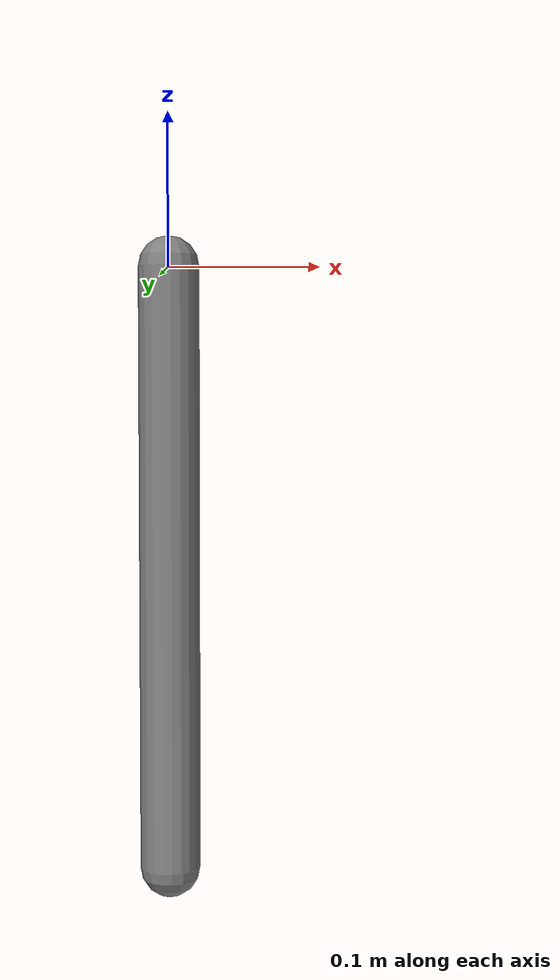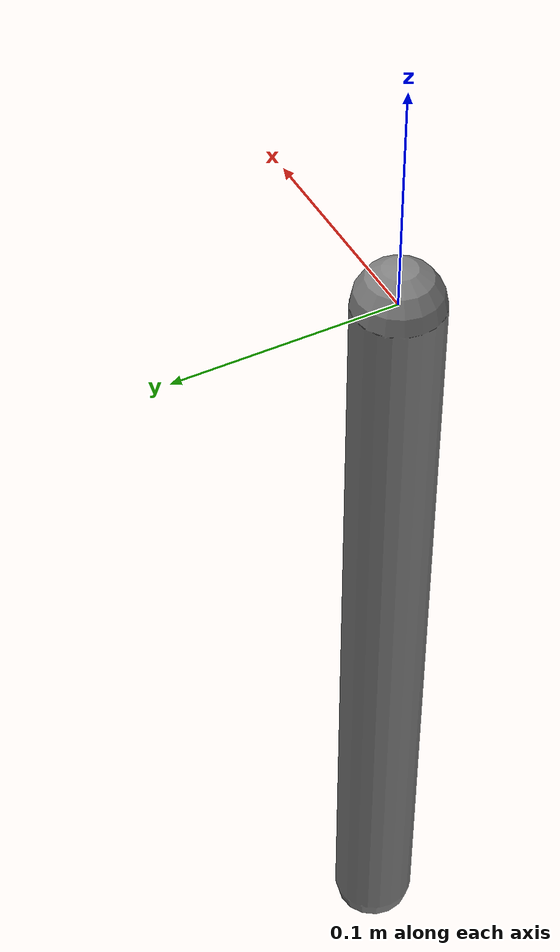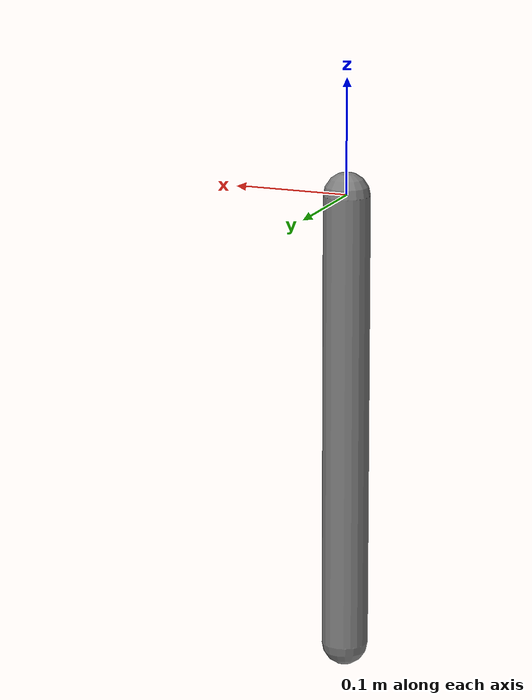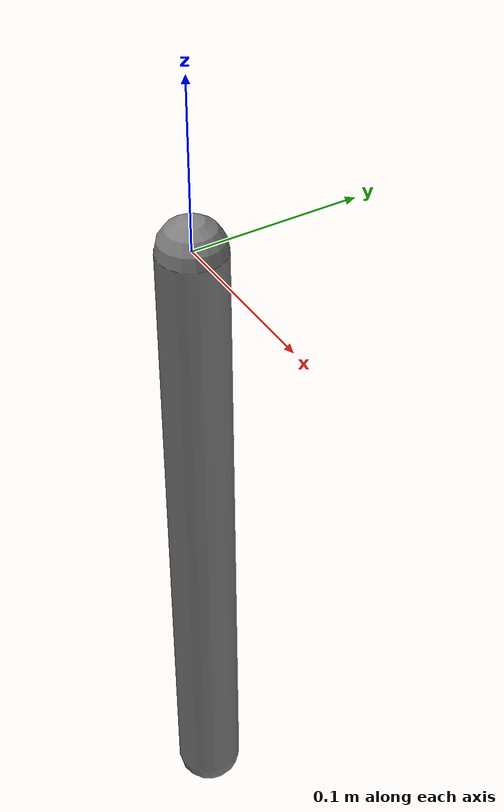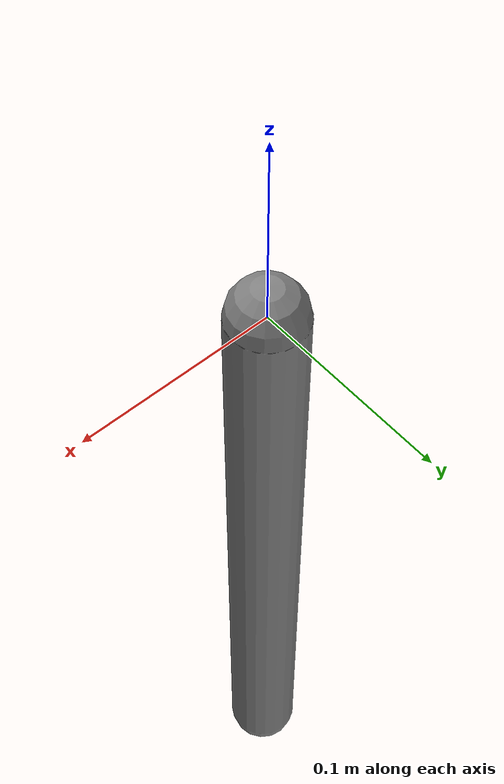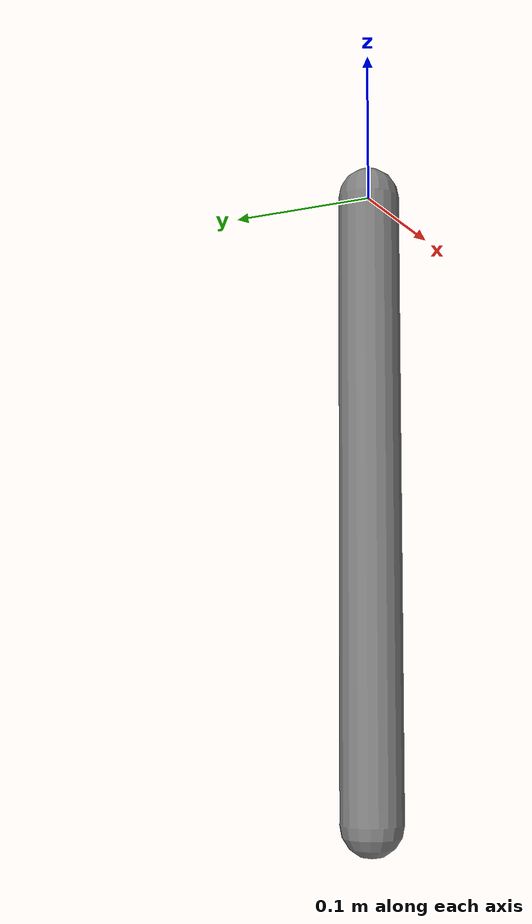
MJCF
<mujoco model="damped-pendulum">
  <compiler angle="radian"/>
  <option gravity="0 0 -9.81" timestep="0.001" integrator="RK4">
    <flag energy="enable"/>
  </option>

  <worldbody>
    <body name="arm" pos="0 0 0">
      <joint name="hinge" type="hinge" axis="0 1 0" damping="0.5"/>
      <inertial pos="0 0 -0.2" mass="1.0" diaginertia="0.02 0.02 0.002"/>
      <geom type="capsule" size="0.02" fromto="0 0 0  0 0 -0.4" contype="0" conaffinity="0"/>
    </body>
  </worldbody>
</mujoco>
